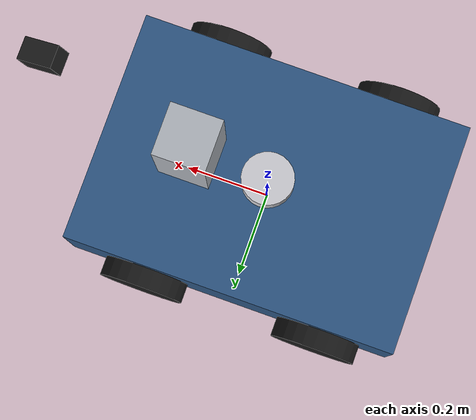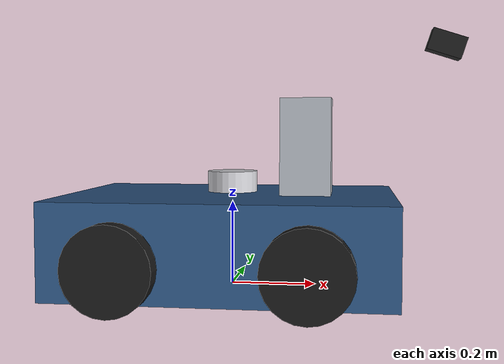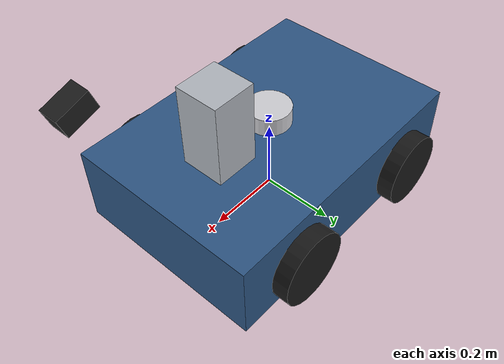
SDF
<?xml version="1.0"?>
<sdf version="1.6">
  <model name="vln_rover">
    <static>false</static>

    <link name="base_footprint">
      <gravity>false</gravity>
      <self_collide>false</self_collide>
      <kinematic>false</kinematic>
      <inertial>
        <mass>18.0</mass>
        <inertia>
          <ixx>1.5</ixx>
          <iyy>2.0</iyy>
          <izz>2.5</izz>
          <ixy>0.0</ixy>
          <ixz>0.0</ixz>
          <iyz>0.0</iyz>
        </inertia>
      </inertial>

      <collision name="chassis_collision">
        <pose>0 0 0.11 0 0 0</pose>
        <geometry>
          <box>
            <size>0.78 0.54 0.22</size>
          </box>
        </geometry>
      </collision>

      <visual name="chassis_visual">
        <pose>0 0 0.11 0 0 0</pose>
        <geometry>
          <box>
            <size>0.78 0.54 0.22</size>
          </box>
        </geometry>
        <material>
          <ambient>0.18 0.34 0.52 1</ambient>
          <diffuse>0.18 0.34 0.52 1</diffuse>
        </material>
      </visual>

      <visual name="mast_visual">
        <pose>0.18 0 0.33 0 0 0</pose>
        <geometry>
          <box>
            <size>0.12 0.12 0.24</size>
          </box>
        </geometry>
        <material>
          <ambient>0.70 0.72 0.75 1</ambient>
          <diffuse>0.70 0.72 0.75 1</diffuse>
        </material>
      </visual>

      <visual name="wheel_fl_visual">
        <pose>0.20 0.29 0.08 1.5708 0 0</pose>
        <geometry>
          <cylinder>
            <radius>0.10</radius>
            <length>0.05</length>
          </cylinder>
        </geometry>
        <material>
          <ambient>0.10 0.10 0.10 1</ambient>
          <diffuse>0.10 0.10 0.10 1</diffuse>
        </material>
      </visual>

      <visual name="wheel_fr_visual">
        <pose>0.20 -0.29 0.08 1.5708 0 0</pose>
        <geometry>
          <cylinder>
            <radius>0.10</radius>
            <length>0.05</length>
          </cylinder>
        </geometry>
        <material>
          <ambient>0.10 0.10 0.10 1</ambient>
          <diffuse>0.10 0.10 0.10 1</diffuse>
        </material>
      </visual>

      <visual name="wheel_rl_visual">
        <pose>-0.22 0.29 0.08 1.5708 0 0</pose>
        <geometry>
          <cylinder>
            <radius>0.10</radius>
            <length>0.05</length>
          </cylinder>
        </geometry>
        <material>
          <ambient>0.10 0.10 0.10 1</ambient>
          <diffuse>0.10 0.10 0.10 1</diffuse>
        </material>
      </visual>

      <visual name="wheel_rr_visual">
        <pose>-0.22 -0.29 0.08 1.5708 0 0</pose>
        <geometry>
          <cylinder>
            <radius>0.10</radius>
            <length>0.05</length>
          </cylinder>
        </geometry>
        <material>
          <ambient>0.10 0.10 0.10 1</ambient>
          <diffuse>0.10 0.10 0.10 1</diffuse>
        </material>
      </visual>
    </link>

    <link name="camera_link">
      <pose>0.5 -0.04 0.57 0 0.314 0</pose>
      <gravity>false</gravity>
      <self_collide>false</self_collide>
      <kinematic>false</kinematic>
      <inertial>
        <mass>0.2</mass>
        <inertia>
          <ixx>0.001</ixx>
          <iyy>0.001</iyy>
          <izz>0.001</izz>
          <ixy>0.0</ixy>
          <ixz>0.0</ixz>
          <iyz>0.0</iyz>
        </inertia>
      </inertial>
      <visual name="camera_visual">
        <geometry>
          <box>
            <size>0.08 0.05 0.05</size>
          </box>
        </geometry>
        <material>
          <ambient>0.12 0.12 0.12 1</ambient>
          <diffuse>0.12 0.12 0.12 1</diffuse>
        </material>
      </visual>
      <sensor type="camera" name="front_rgb_camera">
        <always_on>true</always_on>
        <update_rate>10</update_rate>
        <camera name="front_rgb">
          <horizontal_fov>2.0</horizontal_fov>
          <image>
            <width>1080</width>
            <height>720</height>
            <format>R8G8B8</format>
          </image>
          <clip>
            <near>0.05</near>
            <far>50.0</far>
          </clip>
        </camera>
        <plugin name="front_rgb_plugin" filename="libgazebo_ros_camera.so">
          <alwaysOn>true</alwaysOn>
          <updateRate>0.0</updateRate>
          <cameraName>magv_camera</cameraName>
          <imageTopicName>/magv/camera/image_raw</imageTopicName>
          <cameraInfoTopicName>/magv/camera/camera_info</cameraInfoTopicName>
          <frameName>camera_optical_frame</frameName>
          <hackBaseline>0.0</hackBaseline>
          <distortionK1>0.0</distortionK1>
          <distortionK2>0.0</distortionK2>
          <distortionK3>0.0</distortionK3>
          <distortionT1>0.0</distortionT1>
          <distortionT2>0.0</distortionT2>
        </plugin>
      </sensor>
    </link>

    <joint name="camera_joint" type="fixed">
      <parent>base_footprint</parent>
      <child>camera_link</child>
    </joint>

    <link name="lidar_link">
      <pose>0 0 0.25 0 0 0</pose>
      <gravity>false</gravity>
      <self_collide>false</self_collide>
      <kinematic>false</kinematic>
      <inertial>
        <mass>0.2</mass>
        <inertia>
          <ixx>0.001</ixx>
          <iyy>0.001</iyy>
          <izz>0.001</izz>
          <ixy>0.0</ixy>
          <ixz>0.0</ixz>
          <iyz>0.0</iyz>
        </inertia>
      </inertial>
      <visual name="lidar_visual">
        <geometry>
          <cylinder>
            <radius>0.06</radius>
            <length>0.05</length>
          </cylinder>
        </geometry>
        <material>
          <ambient>0.82 0.82 0.84 1</ambient>
          <diffuse>0.82 0.82 0.84 1</diffuse>
        </material>
      </visual>

      <sensor type="depth" name="forward_depth_lidar">
        <always_on>true</always_on>
        <update_rate>8</update_rate>
        <camera name="depth_lidar_camera">
          <horizontal_fov>2.2</horizontal_fov>
          <image>
            <width>640</width>
            <height>64</height>
            <format>R8G8B8</format>
          </image>
          <clip>
            <near>0.15</near>
            <far>18.0</far>
          </clip>
        </camera>
        <plugin name="depth_lidar_plugin" filename="libgazebo_ros_depth_camera.so">
          <alwaysOn>true</alwaysOn>
          <updateRate>0.0</updateRate>
          <cameraName>magv_depth_lidar</cameraName>
          <imageTopicName>/magv/lidar/rgb/image_raw</imageTopicName>
          <cameraInfoTopicName>/magv/lidar/rgb/camera_info</cameraInfoTopicName>
          <depthImageTopicName>/magv/lidar/depth/image_raw</depthImageTopicName>
          <depthImageCameraInfoTopicName>/magv/lidar/depth/camera_info</depthImageCameraInfoTopicName>
          <pointCloudTopicName>/magv/scan/3d</pointCloudTopicName>
          <frameName>lidar_optical_frame</frameName>
          <hackBaseline>0.0</hackBaseline>
          <pointCloudCutoff>0.15</pointCloudCutoff>
          <distortionK1>0.0</distortionK1>
          <distortionK2>0.0</distortionK2>
          <distortionK3>0.0</distortionK3>
          <distortionT1>0.0</distortionT1>
          <distortionT2>0.0</distortionT2>
        </plugin>
      </sensor>

      <sensor type="ray" name="planar_laser">
        <always_on>true</always_on>
        <update_rate>12</update_rate>
        <ray>
          <scan>
            <horizontal>
              <samples>720</samples>
              <resolution>1</resolution>
              <min_angle>-3.14159</min_angle>
              <max_angle>3.14159</max_angle>
            </horizontal>
          </scan>
          <range>
            <min>0.12</min>
            <max>20.0</max>
            <resolution>0.02</resolution>
          </range>
        </ray>
        <plugin name="planar_laser_plugin" filename="libgazebo_ros_laser.so">
          <alwaysOn>true</alwaysOn>
          <updateRate>0.0</updateRate>
          <gaussianNoise>0.01</gaussianNoise>
          <topicName>/magv/scan/2d</topicName>
          <frameName>lidar_link</frameName>
        </plugin>
      </sensor>
    </link>

    <joint name="lidar_joint" type="fixed">
      <parent>base_footprint</parent>
      <child>lidar_link</child>
    </joint>

    <plugin name="planar_move_controller" filename="libgazebo_ros_planar_move.so">
      <robotNamespace>/</robotNamespace>
      <commandTopic>/magv/omni_drive_controller/cmd_vel</commandTopic>
      <odometryTopic>/magv/odometry/gt</odometryTopic>
      <odometryFrame>map</odometryFrame>
      <robotBaseFrame>base_footprint</robotBaseFrame>
      <odometryRate>30.0</odometryRate>
      <cmdTimeout>0.5</cmdTimeout>
    </plugin>
  </model>
</sdf>
